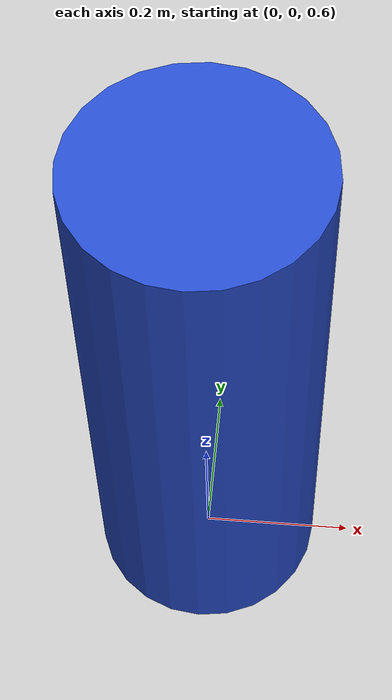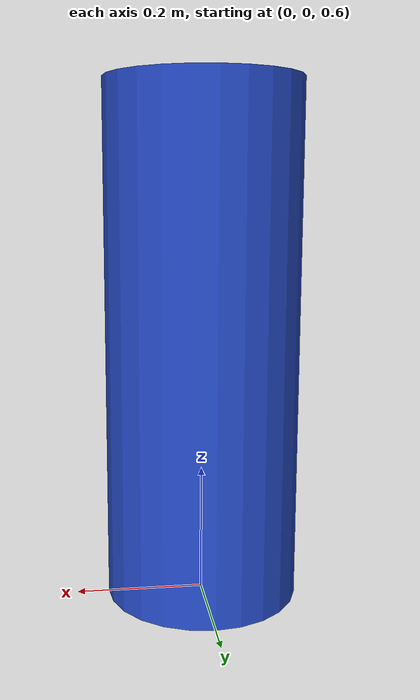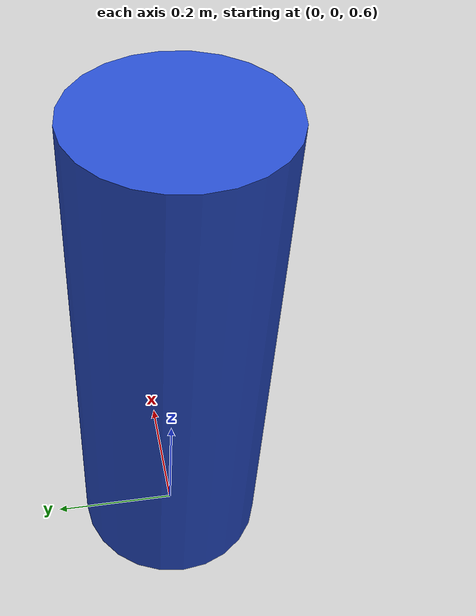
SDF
<sdf version='1.6'>
<model name='cylinder'>
  <static>false</static>
  <pose frame=''>0 0 0 0 -0 0</pose>
  <link name='link'>
    <pose frame=''>0 0 1 0 -0 0</pose>
    <inertial>
      <mass>100</mass>
      <inertia>
        <ixx>0.166667</ixx>
        <ixy>0</ixy>
        <ixz>0</ixz>
        <iyy>0.166667</iyy>
        <iyz>0</iyz>
        <izz>0.166667</izz>
      </inertia>
    </inertial>
    <collision name='collision'>
      <geometry>
        <cylinder>
    	  <radius>0.15</radius>
    	  <length>.8</length>
        </cylinder>
      </geometry>
      <max_contacts>10</max_contacts>
      <surface>
        <contact>
          <ode/>
        </contact>
        <bounce/>
        <friction>
          <torsional>
            <ode/>
          </torsional>
          <ode/>
        </friction>
      </surface>
    </collision>
    <visual name='visual'>
      <geometry>
        <cylinder>
    	  <radius>0.15</radius>
    	  <length>.8</length>
        </cylinder>
      </geometry>
      <material>
        <script>
          <name>Gazebo/Blue</name>
          <uri>file://media/materials/scripts/gazebo.material</uri>
        </script>
      </material>
    </visual>
    <self_collide>0</self_collide>
    <kinematic>0</kinematic>
  </link>
</model>
</sdf>

<!-- Spawn with the following command: rosrun gazebo_ros spawn_model -sdf -file /home/justin/catkin_ws/src/navigation_test/configs/models/pole_005_06.srdf -model pole -x 1
 -->
